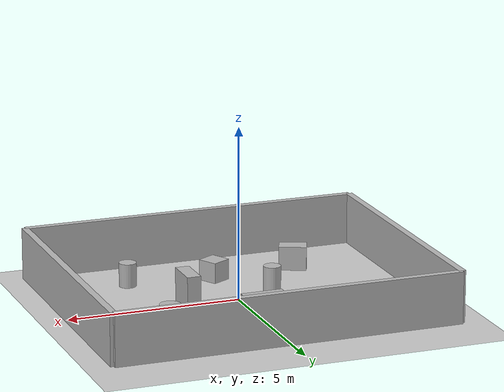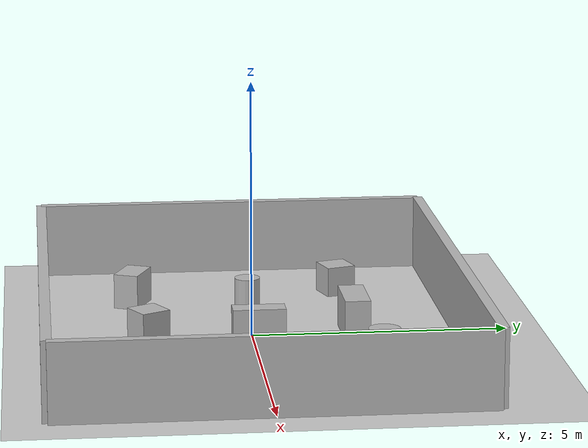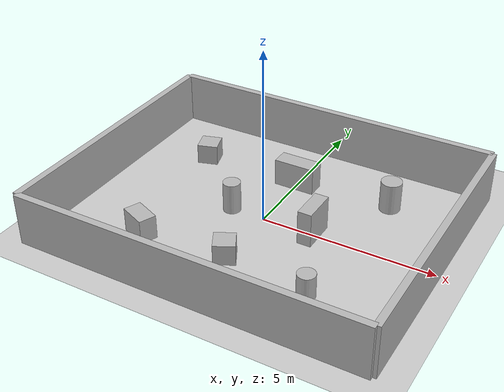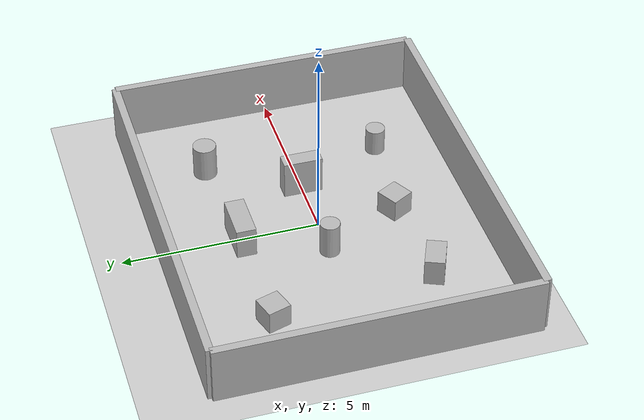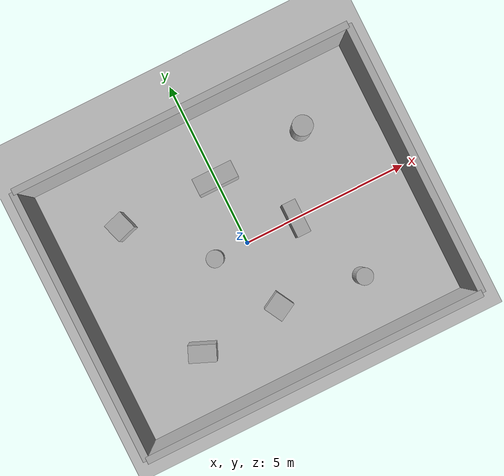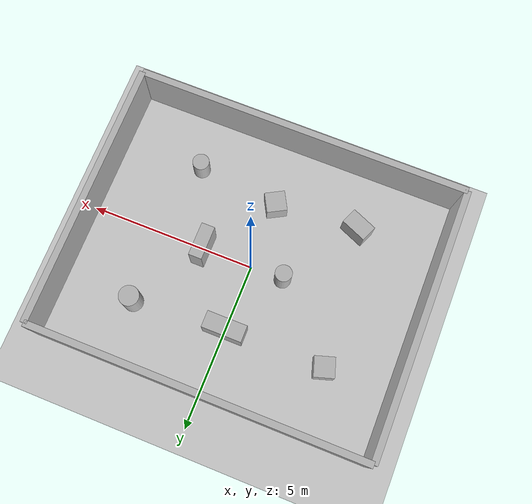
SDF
<?xml version="1.0" ?>
<sdf version="1.6">

  <world name="slam_environment">

    <!-- Ground -->
    <include>
      <uri>model://ground_plane</uri>
    </include>

    <!-- 10m x 8m ROOM                                         -->

    <!-- NORTH WALL -->
    <model name="north_wall">
      <static>true</static>
      <pose>0 4 0.75 0 0 0</pose>

      <link name="wall_link">
        <collision name="collision">
          <geometry>
            <box>
              <size>10.0 0.20 1.5</size>
            </box>
          </geometry>
        </collision>

        <visual name="visual">
          <geometry>
            <box>
              <size>10.0 0.20 1.5</size>
            </box>
          </geometry>
        </visual>
      </link>
    </model>

    <!-- SOUTH WALL -->
    <model name="south_wall">
      <static>true</static>
      <pose>0 -4 0.75 0 0 0</pose>

      <link name="wall_link">
        <collision name="collision">
          <geometry>
            <box>
              <size>10.0 0.20 1.5</size>
            </box>
          </geometry>
        </collision>

        <visual name="visual">
          <geometry>
            <box>
              <size>10.0 0.20 1.5</size>
            </box>
          </geometry>
        </visual>
      </link>
    </model>

    <!-- EAST WALL -->
    <model name="east_wall">
      <static>true</static>
      <pose>5 0 0.75 0 0 0</pose>

      <link name="wall_link">
        <collision name="collision">
          <geometry>
            <box>
              <size>0.20 8.0 1.5</size>
            </box>
          </geometry>
        </collision>

        <visual name="visual">
          <geometry>
            <box>
              <size>0.20 8.0 1.5</size>
            </box>
          </geometry>
        </visual>
      </link>
    </model>

    <!-- WEST WALL -->
    <model name="west_wall">
      <static>true</static>
      <pose>-5 0 0.75 0 0 0</pose>

      <link name="wall_link">
        <collision name="collision">
          <geometry>
            <box>
              <size>0.20 8.0 1.5</size>
            </box>
          </geometry>
        </collision>

        <visual name="visual">
          <geometry>
            <box>
              <size>0.20 8.0 1.5</size>
            </box>
          </geometry>
        </visual>
      </link>
    </model>

    <!-- OBJECT 1 - SMALL BOX                                  -->

    <model name="box_1">
      <static>true</static>
      <pose>-3.0 2.0 0.30 0 0 0.3</pose>

      <link name="link">
        <collision name="collision">
          <geometry>
            <box>
              <size>0.6 0.6 0.6</size>
            </box>
          </geometry>
        </collision>

        <visual name="visual">
          <geometry>
            <box>
              <size>0.6 0.6 0.6</size>
            </box>
          </geometry>
        </visual>
      </link>
    </model>

    <!-- OBJECT 2 - CYLINDER                                   -->

    <model name="cylinder_1">
      <static>true</static>
      <pose>2.8 2.2 0.45 0 0 0</pose>

      <link name="link">
        <collision name="collision">
          <geometry>
            <cylinder>
              <radius>0.30</radius>
              <length>0.9</length>
            </cylinder>
          </geometry>
        </collision>

        <visual name="visual">
          <geometry>
            <cylinder>
              <radius>0.30</radius>
              <length>0.9</length>
            </cylinder>
          </geometry>
        </visual>
      </link>
    </model>

    <!-- OBJECT 3 - RECTANGULAR BOX                            -->

    <model name="box_2">
      <static>true</static>
      <pose>-2.5 -2.2 0.35 0 0 -0.4</pose>

      <link name="link">
        <collision name="collision">
          <geometry>
            <box>
              <size>0.8 0.5 0.7</size>
            </box>
          </geometry>
        </collision>

        <visual name="visual">
          <geometry>
            <box>
              <size>0.8 0.5 0.7</size>
            </box>
          </geometry>
        </visual>
      </link>
    </model>

    <!-- OBJECT 4 - CYLINDER                                   -->

    <model name="cylinder_2">
      <static>true</static>
      <pose>2.5 -2.3 0.35 0 0 0</pose>

      <link name="link">
        <collision name="collision">
          <geometry>
            <cylinder>
              <radius>0.25</radius>
              <length>0.7</length>
            </cylinder>
          </geometry>
        </collision>

        <visual name="visual">
          <geometry>
            <cylinder>
              <radius>0.25</radius>
              <length>0.7</length>
            </cylinder>
          </geometry>
        </visual>
      </link>
    </model>

    <!-- OBJECT 5 - SMALL TABLE                                -->

    <model name="table_obstacle">
      <static>true</static>
      <pose>0 2.0 0.4 0 0 0</pose>

      <link name="link">
        <collision name="collision">
          <geometry>
            <box>
              <size>1.2 0.5 0.8</size>
            </box>
          </geometry>
        </collision>

        <visual name="visual">
          <geometry>
            <box>
              <size>1.2 0.5 0.8</size>
            </box>
          </geometry>
        </visual>
      </link>
    </model>

    <!-- OBJECT 6 - SMALL BOX                                  -->

    <model name="box_3">
      <static>true</static>
      <pose>0 -2.0 0.30 0 0 0.5</pose>

      <link name="link">
        <collision name="collision">
          <geometry>
            <box>
              <size>0.6 0.6 0.6</size>
            </box>
          </geometry>
        </collision>

        <visual name="visual">
          <geometry>
            <box>
              <size>0.6 0.6 0.6</size>
            </box>
          </geometry>
        </visual>
      </link>
    </model>

    <!-- OBJECT 7 - CYLINDER                                   -->

    <model name="cylinder_3">
      <static>true</static>
      <pose>-1.0 0.0 0.45 0 0 0</pose>

      <link name="link">
        <collision name="collision">
          <geometry>
            <cylinder>
              <radius>0.25</radius>
              <length>0.9</length>
            </cylinder>
          </geometry>
        </collision>

        <visual name="visual">
          <geometry>
            <cylinder>
              <radius>0.25</radius>
              <length>0.9</length>
            </cylinder>
          </geometry>
        </visual>
      </link>
    </model>

    <!-- OBJECT 8 - SHELF / WALL-LIKE LANDMARK                 -->

    <model name="small_shelf">
      <static>true</static>
      <pose>1.5 0.0 0.5 0 0 1.57</pose>

      <link name="link">
        <collision name="collision">
          <geometry>
            <box>
              <size>1.0 0.4 1.0</size>
            </box>
          </geometry>
        </collision>

        <visual name="visual">
          <geometry>
            <box>
              <size>1.0 0.4 1.0</size>
            </box>
          </geometry>
         </visual>

      </link>
    </model>

  </world>

</sdf>
